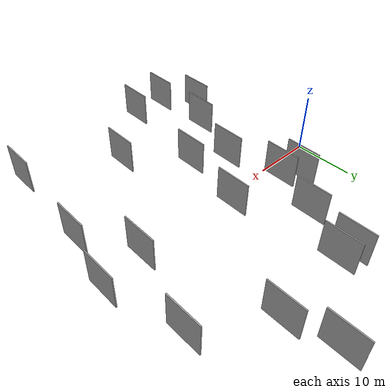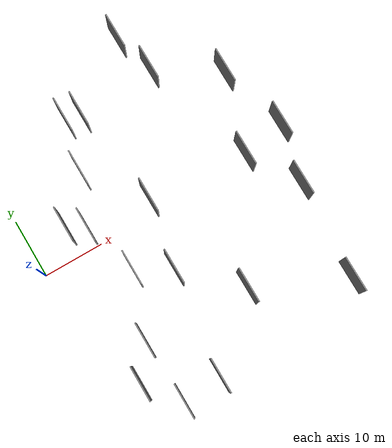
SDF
<sdf version="1.6">
 <world name="default">
  <scene>
   <sky><clouds><speed>12</speed></clouds></sky>
   <ambient>0.4 0.4 0.4 1</ambient>
   <background>0.7 0.7 0.7 1</background>
   <shadows>1</shadows>
  </scene>
  <gravity>0 0 -9.8066</gravity>
  <magnetic_field>6e-06 2.3e-05 -4.2e-05</magnetic_field>
  <physics default="0" name="default_physics" type="ode">
   <ode>
    <solver>
     <type>quick</type>
     <iters>10</iters>
     <sor>1.0</sor>
     <use_dynamic_moi_rescaling>0</use_dynamic_moi_rescaling>
    </solver>
    <constraints>
     <cfm>0</cfm>
     <erp>0.2</erp>
     <contact_max_correcting_vel>100</contact_max_correcting_vel>
     <contact_surface_layer>0.001</contact_surface_layer>
    </constraints>
   </ode>
   <max_step_size>0.004</max_step_size>
   <real_time_factor>1</real_time_factor>
   <real_time_update_rate>250</real_time_update_rate>
  </physics>
  <light name="sun" type="directional">
   <pose>0 0 10 0 0 0</pose>
   <diffuse>0.8 0.8 0.8 1</diffuse>
   <specular>0.2 0.2 0.2 1</specular>
   <attenuation>
    <range>1000</range>
    <constant>0.9</constant>
    <linear>0.01</linear>
    <quadratic>0.001</quadratic>
   </attenuation>
   <direction>-0.5 0.1 -0.9</direction>
  </light>
  <model name="grey_wall_1">
   <static>1</static>
   <pose>28.9887 27.7938 0.0 0.000000 0.000000 1.570796</pose>
   <link name="link">
    <pose>0 0 3.00 0 0 0</pose>
    <collision name="collision"><geometry><box><size>6.00 0.2 6.00</size></box></geometry></collision>
    <visual name="visual">
     <cast_shadows>0</cast_shadows>
     <geometry><box><size>6.00 0.2 6.00</size></box></geometry>
     <material>
      <script>
       <uri>model://grey_wall/materials/scripts</uri>
       <uri>model://grey_wall/materials/textures</uri>
       <name>vrc/grey_wall</name>
      </script>
     </material>
    </visual>
   </link>
  </model>
  <model name="grey_wall_2">
   <static>1</static>
   <pose>8.4954 -16.9123 0.0 0.000000 0.000000 1.570796</pose>
   <link name="link">
    <pose>0 0 3.00 0 0 0</pose>
    <collision name="collision"><geometry><box><size>6.00 0.2 6.00</size></box></geometry></collision>
    <visual name="visual">
     <cast_shadows>0</cast_shadows>
     <geometry><box><size>6.00 0.2 6.00</size></box></geometry>
     <material>
      <script>
       <uri>model://grey_wall/materials/scripts</uri>
       <uri>model://grey_wall/materials/textures</uri>
       <name>vrc/grey_wall</name>
      </script>
     </material>
    </visual>
   </link>
  </model>
  <model name="grey_wall_3">
   <static>1</static>
   <pose>41.1739 -24.6306 0.0 0.000000 0.000000 1.570796</pose>
   <link name="link">
    <pose>0 0 3.00 0 0 0</pose>
    <collision name="collision"><geometry><box><size>6.00 0.2 6.00</size></box></geometry></collision>
    <visual name="visual">
     <cast_shadows>0</cast_shadows>
     <geometry><box><size>6.00 0.2 6.00</size></box></geometry>
     <material>
      <script>
       <uri>model://grey_wall/materials/scripts</uri>
       <uri>model://grey_wall/materials/textures</uri>
       <name>vrc/grey_wall</name>
      </script>
     </material>
    </visual>
   </link>
  </model>
  <model name="grey_wall_4">
   <static>1</static>
   <pose>6.5806 4.8067 0.0 0.000000 0.000000 1.570796</pose>
   <link name="link">
    <pose>0 0 3.00 0 0 0</pose>
    <collision name="collision"><geometry><box><size>6.00 0.2 6.00</size></box></geometry></collision>
    <visual name="visual">
     <cast_shadows>0</cast_shadows>
     <geometry><box><size>6.00 0.2 6.00</size></box></geometry>
     <material>
      <script>
       <uri>model://grey_wall/materials/scripts</uri>
       <uri>model://grey_wall/materials/textures</uri>
       <name>vrc/grey_wall</name>
      </script>
     </material>
    </visual>
   </link>
  </model>
  <model name="grey_wall_5">
   <static>1</static>
   <pose>4.6306 -22.2022 0.0 0.000000 0.000000 1.570796</pose>
   <link name="link">
    <pose>0 0 3.00 0 0 0</pose>
    <collision name="collision"><geometry><box><size>6.00 0.2 6.00</size></box></geometry></collision>
    <visual name="visual">
     <cast_shadows>0</cast_shadows>
     <geometry><box><size>6.00 0.2 6.00</size></box></geometry>
     <material>
      <script>
       <uri>model://grey_wall/materials/scripts</uri>
       <uri>model://grey_wall/materials/textures</uri>
       <name>vrc/grey_wall</name>
      </script>
     </material>
    </visual>
   </link>
  </model>
  <model name="grey_wall_6">
   <static>1</static>
   <pose>20.1638 2.1118 0.0 0.000000 0.000000 1.570796</pose>
   <link name="link">
    <pose>0 0 3.00 0 0 0</pose>
    <collision name="collision"><geometry><box><size>6.00 0.2 6.00</size></box></geometry></collision>
    <visual name="visual">
     <cast_shadows>0</cast_shadows>
     <geometry><box><size>6.00 0.2 6.00</size></box></geometry>
     <material>
      <script>
       <uri>model://grey_wall/materials/scripts</uri>
       <uri>model://grey_wall/materials/textures</uri>
       <name>vrc/grey_wall</name>
      </script>
     </material>
    </visual>
   </link>
  </model>
  <model name="grey_wall_7">
   <static>1</static>
   <pose>12.2830 -6.4026 0.0 0.000000 0.000000 1.570796</pose>
   <link name="link">
    <pose>0 0 3.00 0 0 0</pose>
    <collision name="collision"><geometry><box><size>6.00 0.2 6.00</size></box></geometry></collision>
    <visual name="visual">
     <cast_shadows>0</cast_shadows>
     <geometry><box><size>6.00 0.2 6.00</size></box></geometry>
     <material>
      <script>
       <uri>model://grey_wall/materials/scripts</uri>
       <uri>model://grey_wall/materials/textures</uri>
       <name>vrc/grey_wall</name>
      </script>
     </material>
    </visual>
   </link>
  </model>
  <model name="grey_wall_8">
   <static>1</static>
   <pose>42.2926 -7.7205 0.0 0.000000 0.000000 1.570796</pose>
   <link name="link">
    <pose>0 0 3.00 0 0 0</pose>
    <collision name="collision"><geometry><box><size>6.00 0.2 6.00</size></box></geometry></collision>
    <visual name="visual">
     <cast_shadows>0</cast_shadows>
     <geometry><box><size>6.00 0.2 6.00</size></box></geometry>
     <material>
      <script>
       <uri>model://grey_wall/materials/scripts</uri>
       <uri>model://grey_wall/materials/textures</uri>
       <name>vrc/grey_wall</name>
      </script>
     </material>
    </visual>
   </link>
  </model>
  <model name="grey_wall_9">
   <static>1</static>
   <pose>26.2933 -17.7617 0.0 0.000000 0.000000 1.570796</pose>
   <link name="link">
    <pose>0 0 3.00 0 0 0</pose>
    <collision name="collision"><geometry><box><size>6.00 0.2 6.00</size></box></geometry></collision>
    <visual name="visual">
     <cast_shadows>0</cast_shadows>
     <geometry><box><size>6.00 0.2 6.00</size></box></geometry>
     <material>
      <script>
       <uri>model://grey_wall/materials/scripts</uri>
       <uri>model://grey_wall/materials/textures</uri>
       <name>vrc/grey_wall</name>
      </script>
     </material>
    </visual>
   </link>
  </model>
  <model name="grey_wall_10">
   <static>1</static>
   <pose>17.6846 19.6714 0.0 0.000000 0.000000 1.570796</pose>
   <link name="link">
    <pose>0 0 3.00 0 0 0</pose>
    <collision name="collision"><geometry><box><size>6.00 0.2 6.00</size></box></geometry></collision>
    <visual name="visual">
     <cast_shadows>0</cast_shadows>
     <geometry><box><size>6.00 0.2 6.00</size></box></geometry>
     <material>
      <script>
       <uri>model://grey_wall/materials/scripts</uri>
       <uri>model://grey_wall/materials/textures</uri>
       <name>vrc/grey_wall</name>
      </script>
     </material>
    </visual>
   </link>
  </model>
  <model name="grey_wall_11">
   <static>1</static>
   <pose>44.4662 2.0539 0.0 0.000000 0.000000 1.570796</pose>
   <link name="link">
    <pose>0 0 3.00 0 0 0</pose>
    <collision name="collision"><geometry><box><size>6.00 0.2 6.00</size></box></geometry></collision>
    <visual name="visual">
     <cast_shadows>0</cast_shadows>
     <geometry><box><size>6.00 0.2 6.00</size></box></geometry>
     <material>
      <script>
       <uri>model://grey_wall/materials/scripts</uri>
       <uri>model://grey_wall/materials/textures</uri>
       <name>vrc/grey_wall</name>
      </script>
     </material>
    </visual>
   </link>
  </model>
  <model name="grey_wall_12">
   <static>1</static>
   <pose>41.1675 13.9838 0.0 0.000000 0.000000 1.570796</pose>
   <link name="link">
    <pose>0 0 3.00 0 0 0</pose>
    <collision name="collision"><geometry><box><size>6.00 0.2 6.00</size></box></geometry></collision>
    <visual name="visual">
     <cast_shadows>0</cast_shadows>
     <geometry><box><size>6.00 0.2 6.00</size></box></geometry>
     <material>
      <script>
       <uri>model://grey_wall/materials/scripts</uri>
       <uri>model://grey_wall/materials/textures</uri>
       <name>vrc/grey_wall</name>
      </script>
     </material>
    </visual>
   </link>
  </model>
  <model name="grey_wall_13">
   <static>1</static>
   <pose>9.0089 -27.7426 0.0 0.000000 0.000000 1.570796</pose>
   <link name="link">
    <pose>0 0 3.00 0 0 0</pose>
    <collision name="collision"><geometry><box><size>6.00 0.2 6.00</size></box></geometry></collision>
    <visual name="visual">
     <cast_shadows>0</cast_shadows>
     <geometry><box><size>6.00 0.2 6.00</size></box></geometry>
     <material>
      <script>
       <uri>model://grey_wall/materials/scripts</uri>
       <uri>model://grey_wall/materials/textures</uri>
       <name>vrc/grey_wall</name>
      </script>
     </material>
    </visual>
   </link>
  </model>
  <model name="grey_wall_14">
   <static>1</static>
   <pose>37.0239 0.7836 0.0 0.000000 0.000000 1.570796</pose>
   <link name="link">
    <pose>0 0 3.00 0 0 0</pose>
    <collision name="collision"><geometry><box><size>6.00 0.2 6.00</size></box></geometry></collision>
    <visual name="visual">
     <cast_shadows>0</cast_shadows>
     <geometry><box><size>6.00 0.2 6.00</size></box></geometry>
     <material>
      <script>
       <uri>model://grey_wall/materials/scripts</uri>
       <uri>model://grey_wall/materials/textures</uri>
       <name>vrc/grey_wall</name>
      </script>
     </material>
    </visual>
   </link>
  </model>
  <model name="grey_wall_15">
   <static>1</static>
   <pose>12.9345 11.4031 0.0 0.000000 0.000000 1.570796</pose>
   <link name="link">
    <pose>0 0 3.00 0 0 0</pose>
    <collision name="collision"><geometry><box><size>6.00 0.2 6.00</size></box></geometry></collision>
    <visual name="visual">
     <cast_shadows>0</cast_shadows>
     <geometry><box><size>6.00 0.2 6.00</size></box></geometry>
     <material>
      <script>
       <uri>model://grey_wall/materials/scripts</uri>
       <uri>model://grey_wall/materials/textures</uri>
       <name>vrc/grey_wall</name>
      </script>
     </material>
    </visual>
   </link>
  </model>
  <model name="grey_wall_16">
   <static>1</static>
   <pose>30.9821 20.6169 0.0 0.000000 0.000000 1.570796</pose>
   <link name="link">
    <pose>0 0 3.00 0 0 0</pose>
    <collision name="collision"><geometry><box><size>6.00 0.2 6.00</size></box></geometry></collision>
    <visual name="visual">
     <cast_shadows>0</cast_shadows>
     <geometry><box><size>6.00 0.2 6.00</size></box></geometry>
     <material>
      <script>
       <uri>model://grey_wall/materials/scripts</uri>
       <uri>model://grey_wall/materials/textures</uri>
       <name>vrc/grey_wall</name>
      </script>
     </material>
    </visual>
   </link>
  </model>
  <model name="grey_wall_17">
   <static>1</static>
   <pose>17.9545 -9.4838 0.0 0.000000 0.000000 1.570796</pose>
   <link name="link">
    <pose>0 0 3.00 0 0 0</pose>
    <collision name="collision"><geometry><box><size>6.00 0.2 6.00</size></box></geometry></collision>
    <visual name="visual">
     <cast_shadows>0</cast_shadows>
     <geometry><box><size>6.00 0.2 6.00</size></box></geometry>
     <material>
      <script>
       <uri>model://grey_wall/materials/scripts</uri>
       <uri>model://grey_wall/materials/textures</uri>
       <name>vrc/grey_wall</name>
      </script>
     </material>
    </visual>
   </link>
  </model>
  <model name="grey_wall_18">
   <static>1</static>
   <pose>15.6321 -27.2532 0.0 0.000000 0.000000 1.570796</pose>
   <link name="link">
    <pose>0 0 3.00 0 0 0</pose>
    <collision name="collision"><geometry><box><size>6.00 0.2 6.00</size></box></geometry></collision>
    <visual name="visual">
     <cast_shadows>0</cast_shadows>
     <geometry><box><size>6.00 0.2 6.00</size></box></geometry>
     <material>
      <script>
       <uri>model://grey_wall/materials/scripts</uri>
       <uri>model://grey_wall/materials/textures</uri>
       <name>vrc/grey_wall</name>
      </script>
     </material>
    </visual>
   </link>
  </model>
  <model name="grey_wall_19">
   <static>1</static>
   <pose>15.0263 20.0381 0.0 0.000000 0.000000 1.570796</pose>
   <link name="link">
    <pose>0 0 3.00 0 0 0</pose>
    <collision name="collision"><geometry><box><size>6.00 0.2 6.00</size></box></geometry></collision>
    <visual name="visual">
     <cast_shadows>0</cast_shadows>
     <geometry><box><size>6.00 0.2 6.00</size></box></geometry>
     <material>
      <script>
       <uri>model://grey_wall/materials/scripts</uri>
       <uri>model://grey_wall/materials/textures</uri>
       <name>vrc/grey_wall</name>
      </script>
     </material>
    </visual>
   </link>
  </model>
  <model name="grey_wall_20">
   <static>1</static>
   <pose>9.4974 2.9398 0.0 0.000000 0.000000 1.570796</pose>
   <link name="link">
    <pose>0 0 3.00 0 0 0</pose>
    <collision name="collision"><geometry><box><size>6.00 0.2 6.00</size></box></geometry></collision>
    <visual name="visual">
     <cast_shadows>0</cast_shadows>
     <geometry><box><size>6.00 0.2 6.00</size></box></geometry>
     <material>
      <script>
       <uri>model://grey_wall/materials/scripts</uri>
       <uri>model://grey_wall/materials/textures</uri>
       <name>vrc/grey_wall</name>
      </script>
     </material>
    </visual>
   </link>
  </model>
 </world>
</sdf>
